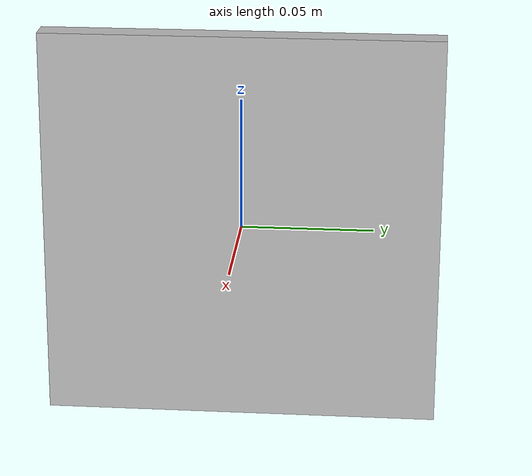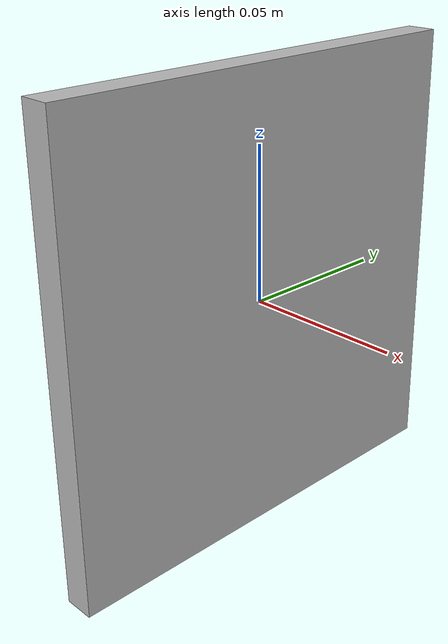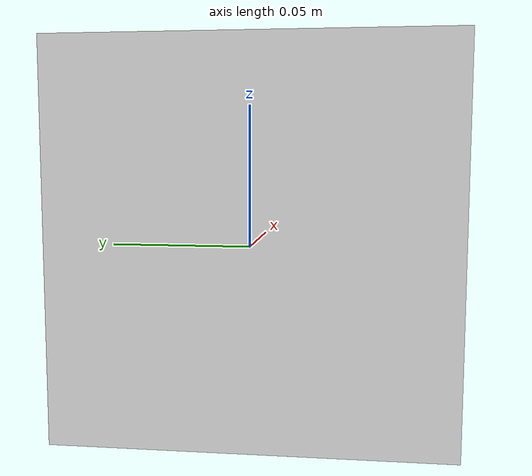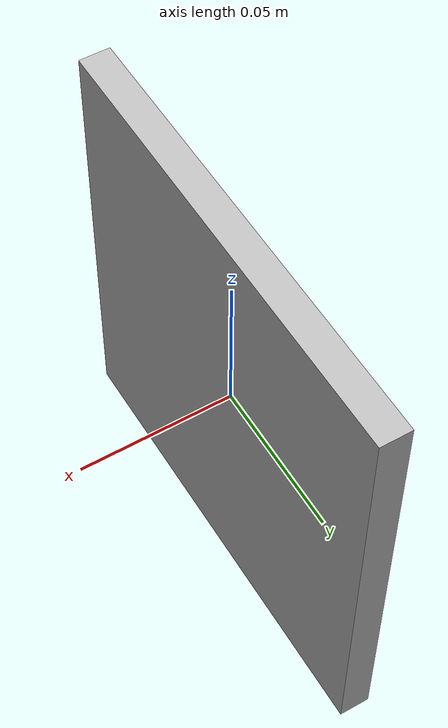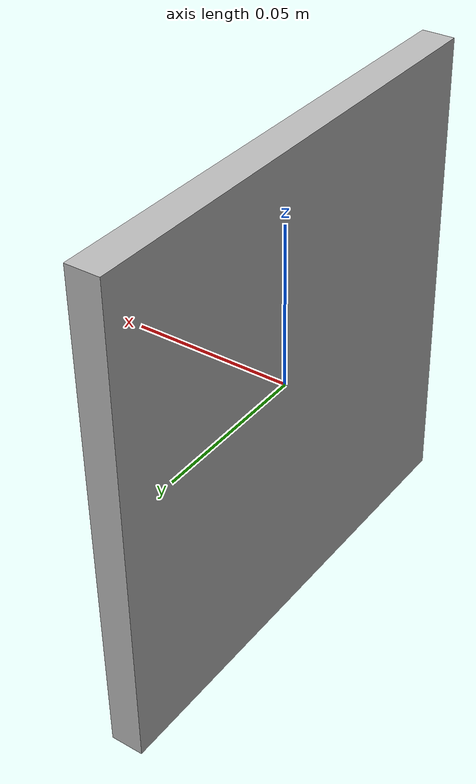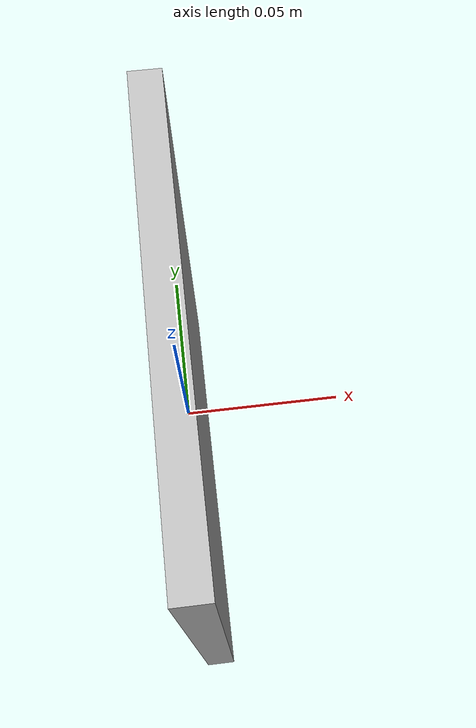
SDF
<?xml version='1.0'?>
<sdf version='1.4'>
    <model name='aruco_4x4_50_3'>
    <static>true</static>

        <link name='link0'>
            <pose>0 0 0 0 0 3.1415</pose>

            <visual name='visual'>
                <geometry>
                    <mesh>
                        <uri>./meshes/aruco_4x4_50_3.dae</uri>
                    </mesh>
                </geometry>
            </visual>

            <collision name='collision'>
                <pose>0 0 0 0 0 0</pose>
                <geometry>
                    <box>
                        <size>0.01 0.2 0.2</size>
                    </box>
                </geometry>
            </collision>

        </link>

    </model>

</sdf>
